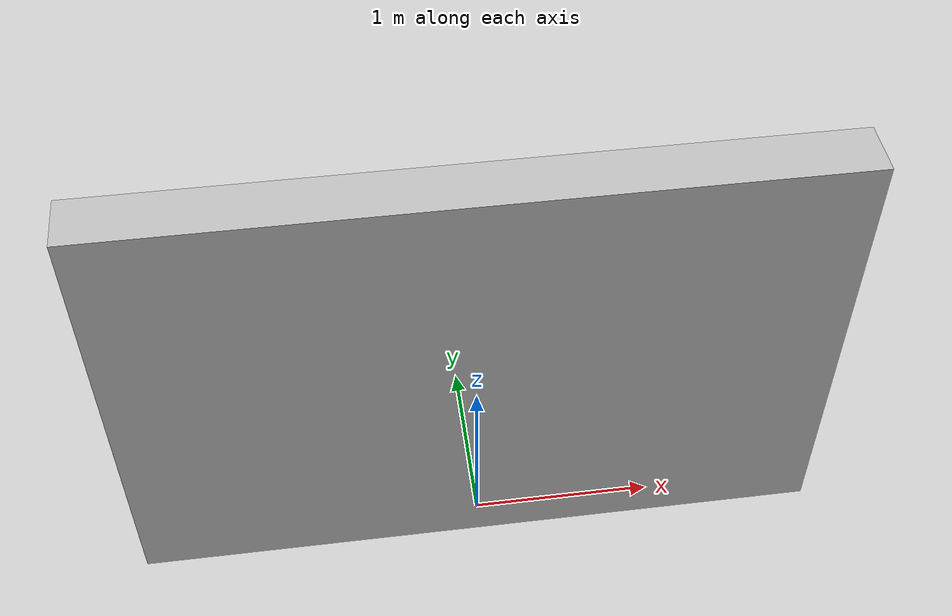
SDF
<?xml version="1.0" ?>
<sdf version="1.5">
  <model name="corridor_wall1">
    <static>true</static>
    <link name="link">
      <pose>0 0 1.25 0 0 0</pose>
      <collision name="collision">
        <geometry>
          <box>
            <size>3.8 0.3 2.5</size>
          </box>
        </geometry>
      </collision>
      <visual name="visual">
        <cast_shadows>false</cast_shadows>
        <geometry>
          <box>
            <size>3.8 0.3 2.5</size>
          </box>
        </geometry>
        <material>
          <script>
            <uri>model://corridor_wall1/materials/scripts</uri>
            <uri>model://corridor_wall1/materials/textures</uri>
            <name>vrc/corridor_wall1</name>
          </script>
        </material>
      </visual>
    </link>
  </model>
</sdf>
